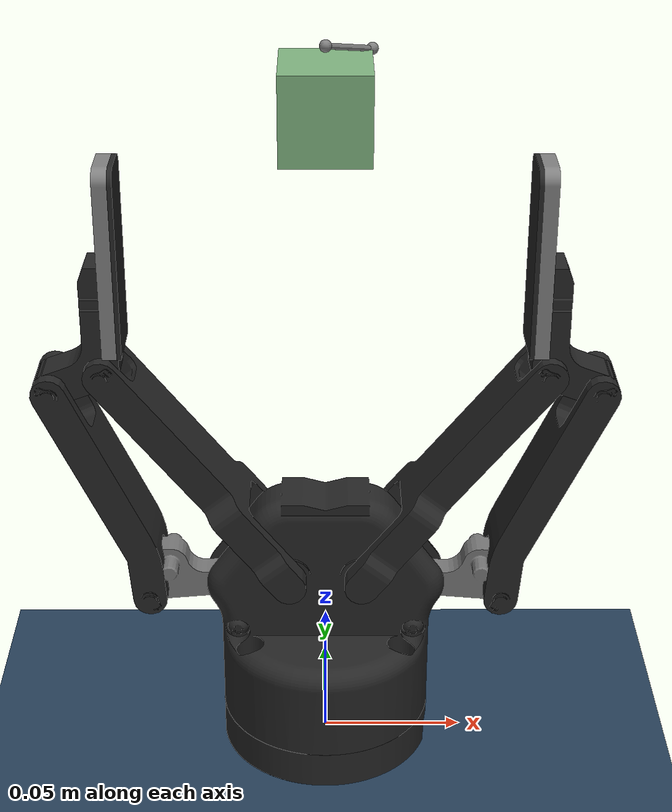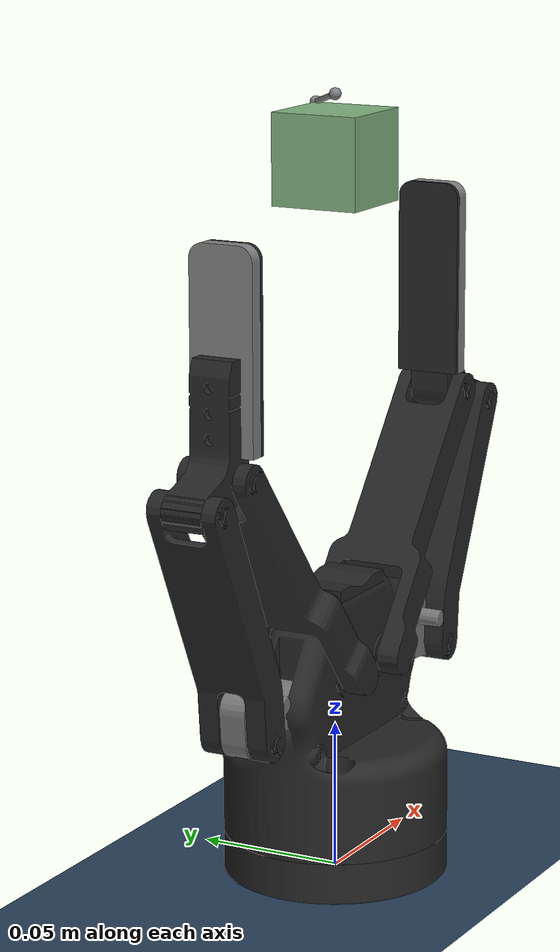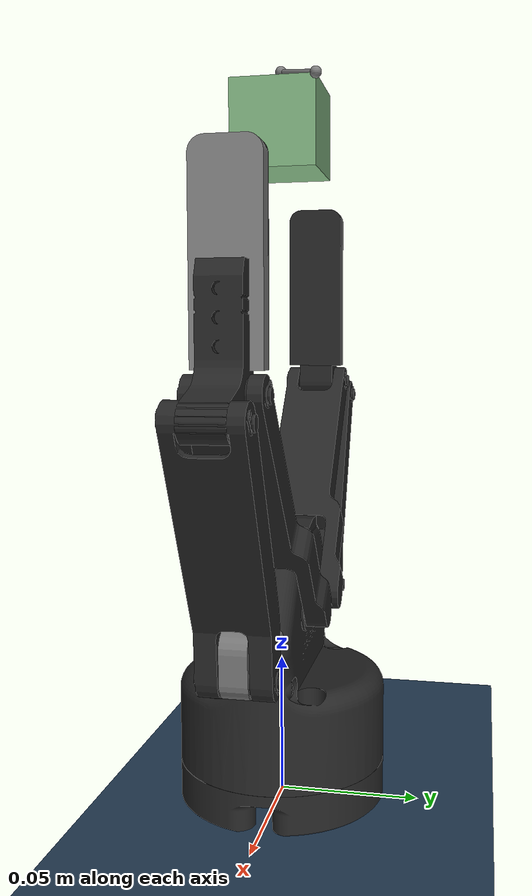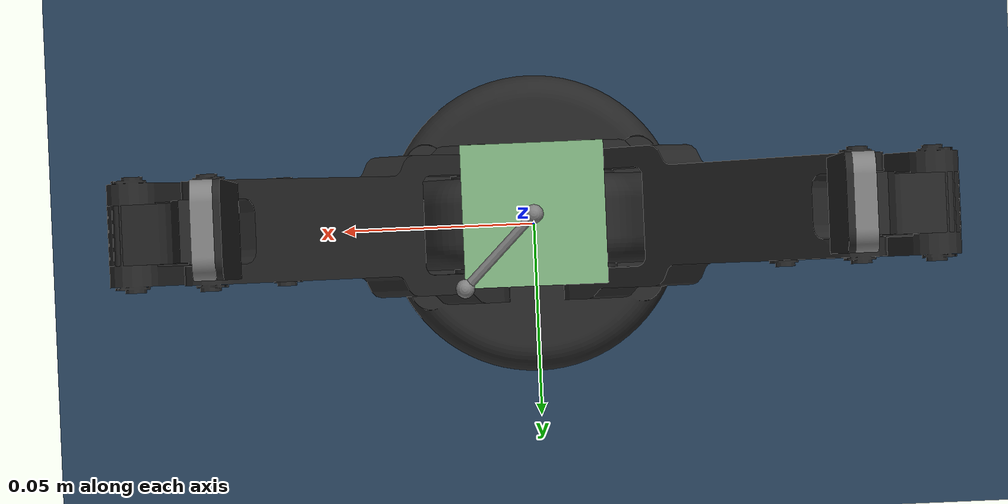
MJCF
<mujoco model="2f140 scene">
  <include file="2f140.xml"/>

  <!-- Add some fluid viscosity to prevent the hanging box from jiggling forever -->
  <option viscosity="0.1"/>

  <statistic center="0 0 0.05" extent="0.3"/>

  <visual>
    <headlight diffuse="0.6 0.6 0.6" ambient="0.3 0.3 0.3" specular="0 0 0"/>
    <rgba haze="0.15 0.25 0.35 1"/>
    <global azimuth="60" elevation="-20"/>
  </visual>

  <asset>
    <texture type="skybox" builtin="gradient" rgb1="0.3 0.5 0.7" rgb2="0 0 0" width="512" height="3072"/>
    <texture type="2d" name="groundplane" builtin="checker" mark="edge" rgb1="0.2 0.3 0.4" rgb2="0.1 0.2 0.3"
      markrgb="0.8 0.8 0.8" width="300" height="300"/>
    <material name="groundplane" texture="groundplane" texuniform="true" texrepeat="5 5" reflectance="0.2"/>
  </asset>

  <worldbody>
    <light pos="0 0 1"/>
    <light pos="0 -0.2 1" dir="0 0.2 -0.8" directional="true"/>
    <geom name="floor" size="0 0 0.05" type="plane" material="groundplane"/>
    <site size="0.002" pos="0 0 0.26" name="anchor"/>
    <body name="object" pos="0 0 0.24">
      <freejoint/>
      <geom type="box" size="0.015 0.015 0.015" rgba=".5 .7 .5 1" friction=".5" priority="1"/>
      <site size="0.002" pos="0.015 0.015 0.015" name="hook"/>
    </body>
  </worldbody>

  <tendon>
    <spatial limited="true" range="0 0.02" width="0.001">
      <site site="hook"/>
      <site site="anchor"/>
    </spatial>
  </tendon>
</mujoco>

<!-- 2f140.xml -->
<mujoco model="robotiq_2f140">
  <compiler angle="radian" meshdir="assets" autolimits="true"/>

  <option cone="elliptic" impratio="10"/>

  <asset>
    <material name="metal" rgba="0.58 0.58 0.58 1"/>
    <material name="silicone" rgba="0.1882 0.1882 0.1882 1"/>
    <material name="gray" rgba="0.4627 0.4627 0.4627 1"/>
    <material name="black" rgba="0.149 0.149 0.149 1"/>

    <mesh class="2f140" file="base_mount.stl"/>
    <mesh class="2f140" file="base.stl"/>
    <mesh class="2f140" file="driver.stl"/>
    <mesh class="2f140" file="coupler.stl"/>
    <mesh class="2f140" file="follower.stl"/>
    <mesh class="2f140" file="pad.stl"/>
    <mesh class="2f140" file="silicone_pad.stl"/>
    <mesh class="2f140" file="spring_link.stl"/>
  </asset>

  <default>
    <default class="2f140">
      <mesh scale="0.001 0.001 0.001"/>
      <general biastype="affine"/>

      <joint axis="1 0 0"/>
      <default class="driver">
        <joint range="0 0.73" armature="0.005" damping="0.1" solimplimit="0.95 0.99 0.001" solreflimit="0.005 1"/>
      </default>
      <default class="follower">
        <joint range="-0.872664 0.872664" pos="0 -0.018 0.0065" solimplimit="0.95 0.99 0.001" solreflimit="0.005 1"/>
      </default>
      <default class="spring_link">
        <joint range="-0.29670597283 0.8" stiffness="0.05" springref="2.62" damping="0.00125"/>
      </default>
      <default class="coupler">
        <joint range="-1.57 0" solimplimit="0.95 0.99 0.001" solreflimit="0.005 1"/>
      </default>

      <default class="visual">
        <geom type="mesh" contype="0" conaffinity="0" group="2"/>
      </default>
      <default class="collision">
        <geom type="mesh" group="3"/>
        <default class="pad_box1">
          <geom mass="0" type="box" pos="0 -0.0026 0.0543" size="0.011 0.004 0.0109" friction="0.7"
            solimp="0.95 0.99 0.001" solref="0.004 1" priority="1" rgba="0.55 0.55 0.55 1"/>
        </default>
        <default class="pad_box2">
          <geom mass="0" type="box" pos="0 -0.0026 0.0327" size="0.011 0.004 0.0109" friction="0.6"
            solimp="0.95 0.99 0.001" solref="0.004 1" priority="1" rgba="0.45 0.45 0.45 1"/>
        </default>
        <default class="pad_box3">
          <geom mass="0" type="box" pos="0 -0.0026 0.0109" size="0.011 0.004 0.0109" friction="0.6"
            solimp="0.95 0.99 0.001" solref="0.004 1" priority="1" rgba="0.45 0.45 0.45 1"/>
        </default>
      </default>
    </default>
  </default>

  <worldbody>
    <body name="base_mount" pos="0 0 0.007" childclass="2f140">
      <geom class="visual" mesh="base_mount" material="black"/>
      <geom class="collision" mesh="base_mount"/>
      <body name="base" pos="0 0 0.0038" quat="1 0 0 -1">
        <inertial mass="0.777441" pos="0 -2.70394e-05 0.0354675" quat="1 -0.00152849 0 0"
          diaginertia="0.000260285 0.000225381 0.000152708"/>
        <geom class="visual" mesh="base" material="black"/>
        <geom class="collision" mesh="base"/>
        <site name="pinch" pos="0 0 0.145" type="sphere" group="5" rgba="0.9 0.9 0.9 1" size="0.005"/>
        <!-- Right-hand side 4-bar linkage -->
        <body name="right_driver" pos="0 0.030601 0.054905">
          <inertial mass="0.00899563" pos="2.96931e-12 0.0177547 0.00107314" quat="0.681301 0.732003 0 0"
            diaginertia="1.72352e-06 1.60906e-06 3.22006e-07"/>
          <joint name="right_driver_joint" class="driver"/>
          <geom class="visual" mesh="driver" material="gray"/>
          <geom class="collision" mesh="driver"/>
          <body name="right_coupler" pos="0 0.0316301 -0.0027563">
            <inertial mass="0.0140974" pos="0 0.00301209 0.0232175" quat="0.705636 -0.0455904 0.0455904 0.705636"
              diaginertia="4.16206e-06 3.52216e-06 8.88131e-07"/>
            <joint name="right_coupler_joint" class="coupler"/>
            <geom class="visual" mesh="coupler" material="black"/>
            <geom class="collision" mesh="coupler"/>
          </body>
        </body>
        <body name="right_spring_link" pos="0 0.0127 0.06142">
          <inertial mass="0.0221642" pos="-8.65005e-09 0.0181624 0.0212658" quat="0.663403 -0.244737 0.244737 0.663403"
            diaginertia="8.96853e-06 6.71733e-06 2.63931e-06"/>
          <joint name="right_spring_link_joint" class="spring_link"/>
          <geom class="visual" mesh="spring_link" material="black"/>
          <geom class="collision" mesh="spring_link"/>
          <body name="right_follower" pos="0 0.080465 0.071496">
            <inertial mass="0.0125222" pos="0 -0.011046 0.0124786" quat="1 0.1664 0 0"
              diaginertia="2.67415e-06 2.4559e-06 6.02031e-07"/>
            <joint name="right_follower_joint" class="follower"/>
            <geom class="visual" mesh="follower" material="black"/>
            <geom class="collision" mesh="follower"/>
            <body name="right_pad" pos="0 -0.0189 0.01352">
              <geom class="pad_box1" name="right_pad1"/>
              <geom class="pad_box2" name="right_pad2"/>
              <geom class="pad_box3" name="right_pad3"/>
              <inertial mass="0.0035" pos="0 -0.0025 0.0185" quat="0.707107 0 0 0.707107"
                diaginertia="4.73958e-07 3.64583e-07 1.23958e-07"/>
              <geom class="visual" mesh="pad"/>
              <body name="right_silicone_pad">
                <geom class="visual" mesh="silicone_pad" material="black"/>
              </body>
            </body>
          </body>
        </body>
        <!-- Left-hand side 4-bar linkage -->
        <body name="left_driver" pos="0 -0.030601 0.054905" quat="0 0 0 1">
          <inertial mass="0.00899563" pos="0 0.0177547 0.00107314" quat="0.681301 0.732003 0 0"
            diaginertia="1.72352e-06 1.60906e-06 3.22006e-07"/>
          <joint name="left_driver_joint" class="driver"/>
          <geom class="visual" mesh="driver" material="gray"/>
          <geom class="collision" mesh="driver"/>
          <body name="left_coupler" pos="0 0.0316301 -0.0027563">
            <inertial mass="0.0140974" pos="0 0.00301209 0.0232175" quat="0.705636 -0.0455904 0.0455904 0.705636"
              diaginertia="4.16206e-06 3.52216e-06 8.88131e-07"/>
            <joint name="left_coupler_joint" class="coupler"/>
            <geom class="visual" mesh="coupler" material="black"/>
            <geom class="collision" mesh="coupler"/>
          </body>
        </body>
        <body name="left_spring_link" pos="0 -0.0127 0.06142" quat="0 0 0 1">
          <inertial mass="0.0221642" pos="-8.65005e-09 0.0181624 0.0212658" quat="0.663403 -0.244737 0.244737 0.663403"
            diaginertia="8.96853e-06 6.71733e-06 2.63931e-06"/>
          <joint name="left_spring_link_joint" class="spring_link"/>
          <geom class="visual" mesh="spring_link" material="black"/>
          <geom class="collision" mesh="spring_link"/>
          <body name="left_follower" pos="0 0.080465 0.071496">
            <inertial mass="0.0125222" pos="0 -0.011046 0.0124786" quat="1 0.1664 0 0"
              diaginertia="2.67415e-06 2.4559e-06 6.02031e-07"/>
            <joint name="left_follower_joint" class="follower"/>
            <geom class="visual" mesh="follower" material="black"/>
            <geom class="collision" mesh="follower"/>
            <body name="left_pad" pos="0 -0.0189 0.01352">
              <geom class="pad_box1" name="left_pad1"/>
              <geom class="pad_box2" name="left_pad2"/>
              <geom class="pad_box3" name="left_pad3"/>
              <inertial mass="0.0035" pos="0 -0.0025 0.0185" quat="1 0 0 1"
                diaginertia="4.73958e-07 3.64583e-07 1.23958e-07"/>
              <geom class="visual" mesh="pad"/>
              <body name="left_silicone_pad">
                <geom class="visual" mesh="silicone_pad" material="black"/>
              </body>
            </body>
          </body>
        </body>
      </body>
    </body>
  </worldbody>

  <contact>
    <exclude body1="base" body2="left_driver"/>
    <exclude body1="base" body2="right_driver"/>
    <exclude body1="base" body2="left_spring_link"/>
    <exclude body1="base" body2="right_spring_link"/>
    <exclude body1="right_coupler" body2="right_follower"/>
    <exclude body1="left_coupler" body2="left_follower"/>
  </contact>

  <tendon>
    <fixed name="split">
      <joint joint="right_driver_joint" coef="0.5"/>
      <joint joint="left_driver_joint" coef="0.5"/>
    </fixed>
  </tendon>

  <equality>
    <connect anchor="0 0 0" body1="right_follower" body2="right_coupler" solimp="0.95 0.99 0.001" solref="0.005 1"/>
    <connect anchor="0 0 0" body1="left_follower" body2="left_coupler" solimp="0.95 0.99 0.001" solref="0.005 1"/>
    <joint joint1="right_driver_joint" joint2="left_driver_joint" polycoef="0 1 0 0 0" solimp="0.95 0.99 0.001"
      solref="0.005 1"/>
  </equality>

  <actuator>
    <general class="2f140" name="fingers_actuator" tendon="split" forcerange="-5 5" ctrlrange="0 255"
      gainprm="0.28627451 0 0" biasprm="0 -100 -10"/>
  </actuator>
</mujoco>
